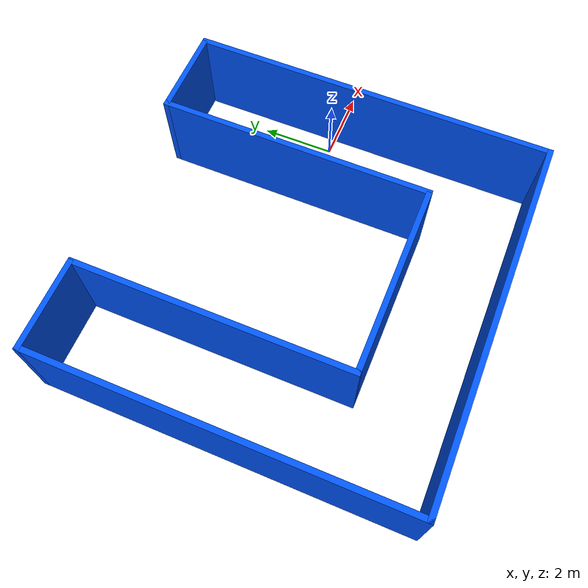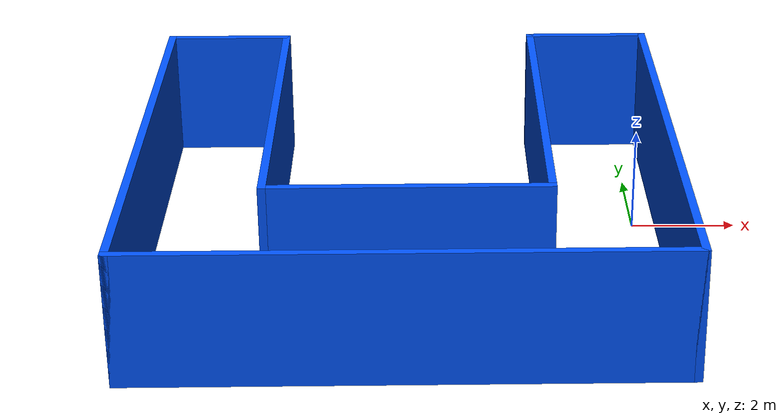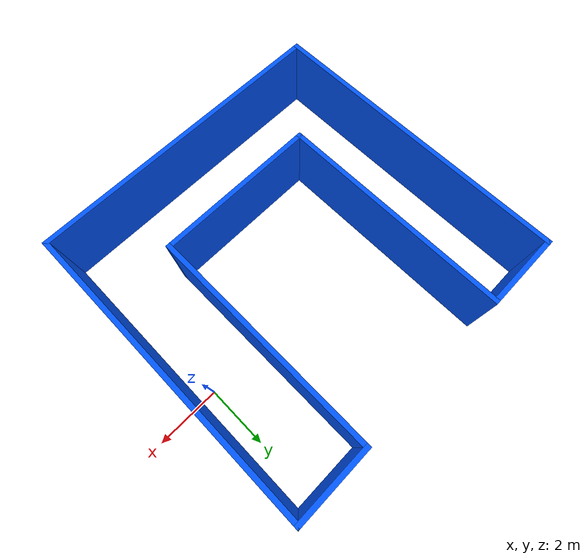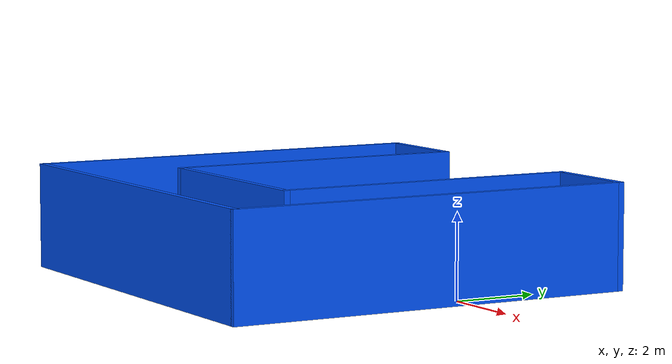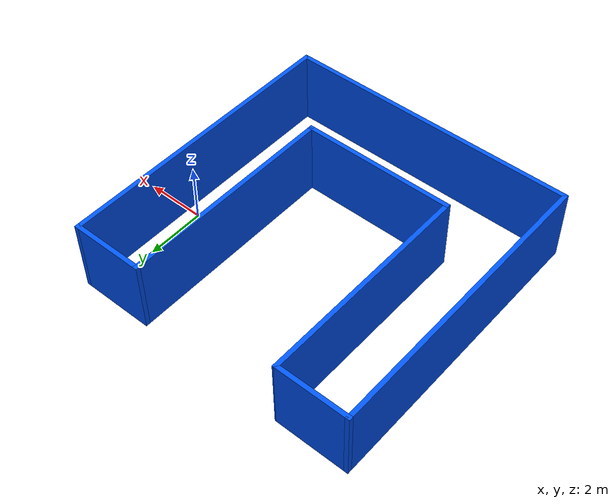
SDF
<?xml version='1.0'?>
<sdf version='1.6'>
  <model name='mybuilding'>
    <pose frame=''>-4.41388 -0.910267 0 0 -0 0</pose>
    <link name='Wall_11'>
      <collision name='Wall_11_Collision'>
        <geometry>
          <box>
            <size>10 0.15 2.5</size>
          </box>
        </geometry>
        <pose frame=''>0 0 1.25 0 -0 0</pose>
      </collision>
      <visual name='Wall_11_Visual'>
        <pose frame=''>0 0 1.25 0 -0 0</pose>
        <geometry>
          <box>
            <size>10 0.15 2.5</size>
          </box>
        </geometry>
        <material>
          <script>
            <uri>file://media/materials/scripts/gazebo.material</uri>
            <name>Gazebo/Grey</name>
          </script>
          <ambient>0 0.333333 1 1</ambient>
        </material>
        <meta>
          <layer>0</layer>
        </meta>
      </visual>
      <pose frame=''>4.925 0 0 0 -0 1.5708</pose>
    </link>
    <link name='Wall_12'>
      <collision name='Wall_12_Collision'>
        <geometry>
          <box>
            <size>2.5 0.15 2.5</size>
          </box>
        </geometry>
        <pose frame=''>0 0 1.25 0 -0 0</pose>
      </collision>
      <visual name='Wall_12_Visual'>
        <pose frame=''>0 0 1.25 0 -0 0</pose>
        <geometry>
          <box>
            <size>2.5 0.15 2.5</size>
          </box>
        </geometry>
        <material>
          <script>
            <uri>file://media/materials/scripts/gazebo.material</uri>
            <name>Gazebo/Grey</name>
          </script>
          <ambient>0 0.333333 1 1</ambient>
        </material>
        <meta>
          <layer>0</layer>
        </meta>
      </visual>
      <pose frame=''>3.75 4.925 0 0 -0 3.14159</pose>
    </link>
    <link name='Wall_13'>
      <collision name='Wall_13_Collision'>
        <geometry>
          <box>
            <size>7.5 0.15 2.5</size>
          </box>
        </geometry>
        <pose frame=''>0 0 1.25 0 -0 0</pose>
      </collision>
      <visual name='Wall_13_Visual'>
        <pose frame=''>0 0 1.25 0 -0 0</pose>
        <geometry>
          <box>
            <size>7.5 0.15 2.5</size>
          </box>
        </geometry>
        <material>
          <script>
            <uri>file://media/materials/scripts/gazebo.material</uri>
            <name>Gazebo/Grey</name>
          </script>
          <ambient>0 0.333333 1 1</ambient>
        </material>
        <meta>
          <layer>0</layer>
        </meta>
      </visual>
      <pose frame=''>2.575 1.25 0 0 0 -1.5708</pose>
    </link>
    <link name='Wall_14'>
      <collision name='Wall_14_Collision'>
        <geometry>
          <box>
            <size>5.24136 0.15 2.5</size>
          </box>
        </geometry>
        <pose frame=''>0 0 1.25 0 -0 0</pose>
      </collision>
      <visual name='Wall_14_Visual'>
        <pose frame=''>0 0 1.25 0 -0 0</pose>
        <geometry>
          <box>
            <size>5.24136 0.15 2.5</size>
          </box>
        </geometry>
        <material>
          <script>
            <uri>file://media/materials/scripts/gazebo.material</uri>
            <name>Gazebo/Grey</name>
          </script>
          <ambient>0 0.333333 1 1</ambient>
        </material>
        <meta>
          <layer>0</layer>
        </meta>
      </visual>
      <pose frame=''>0.029319 -2.425 0 0 -0 3.14159</pose>
    </link>
    <link name='Wall_15'>
      <collision name='Wall_15_Collision'>
        <geometry>
          <box>
            <size>7.5 0.15 2.5</size>
          </box>
        </geometry>
        <pose frame=''>0 0 1.25 0 -0 0</pose>
      </collision>
      <visual name='Wall_15_Visual'>
        <pose frame=''>0 0 1.25 0 -0 0</pose>
        <geometry>
          <box>
            <size>7.5 0.15 2.5</size>
          </box>
        </geometry>
        <material>
          <script>
            <uri>file://media/materials/scripts/gazebo.material</uri>
            <name>Gazebo/Grey</name>
          </script>
          <ambient>0 0.333333 1 1</ambient>
        </material>
        <meta>
          <layer>0</layer>
        </meta>
      </visual>
      <pose frame=''>-2.53648 1.25 0 0 -0 1.5708</pose>
    </link>
    <link name='Wall_5'>
      <collision name='Wall_5_Collision'>
        <geometry>
          <box>
            <size>2.5 0.15 2.5</size>
          </box>
        </geometry>
        <pose frame=''>0 0 1.25 0 -0 0</pose>
      </collision>
      <visual name='Wall_5_Visual'>
        <pose frame=''>0 0 1.25 0 -0 0</pose>
        <geometry>
          <box>
            <size>2.5 0.15 2.5</size>
          </box>
        </geometry>
        <material>
          <script>
            <uri>file://media/materials/scripts/gazebo.material</uri>
            <name>Gazebo/Grey</name>
          </script>
          <ambient>0 0.333333 1 1</ambient>
        </material>
        <meta>
          <layer>0</layer>
        </meta>
      </visual>
      <pose frame=''>-3.75 4.925 0 0 -0 0</pose>
    </link>
    <link name='Wall_8'>
      <collision name='Wall_8_Collision'>
        <geometry>
          <box>
            <size>10 0.15 2.5</size>
          </box>
        </geometry>
        <pose frame=''>0 0 1.25 0 -0 0</pose>
      </collision>
      <visual name='Wall_8_Visual'>
        <pose frame=''>0 0 1.25 0 -0 0</pose>
        <geometry>
          <box>
            <size>10 0.15 2.5</size>
          </box>
        </geometry>
        <material>
          <script>
            <uri>file://media/materials/scripts/gazebo.material</uri>
            <name>Gazebo/Grey</name>
          </script>
          <ambient>0 0.333333 1 1</ambient>
        </material>
        <meta>
          <layer>0</layer>
        </meta>
      </visual>
      <pose frame=''>-4.925 0 0 0 0 -1.5708</pose>
    </link>
    <link name='Wall_9'>
      <collision name='Wall_9_Collision'>
        <geometry>
          <box>
            <size>10 0.15 2.5</size>
          </box>
        </geometry>
        <pose frame=''>0 0 1.25 0 -0 0</pose>
      </collision>
      <visual name='Wall_9_Visual'>
        <pose frame=''>0 0 1.25 0 -0 0</pose>
        <geometry>
          <box>
            <size>10 0.15 2.5</size>
          </box>
        </geometry>
        <material>
          <script>
            <uri>file://media/materials/scripts/gazebo.material</uri>
            <name>Gazebo/Grey</name>
          </script>
          <ambient>0 0.333333 1 1</ambient>
        </material>
        <meta>
          <layer>0</layer>
        </meta>
      </visual>
      <pose frame=''>0 -4.925 0 0 -0 0</pose>
    </link>
    <static>1</static>
  </model>
</sdf>
